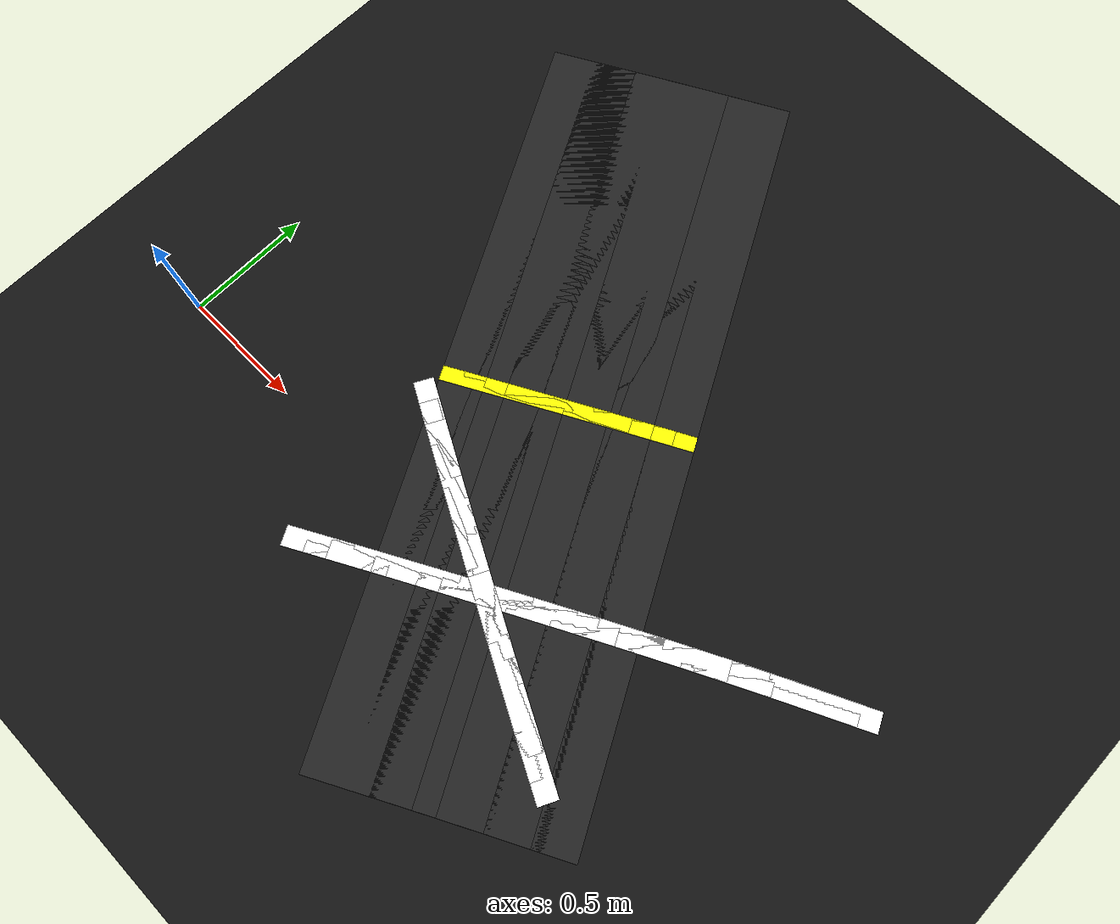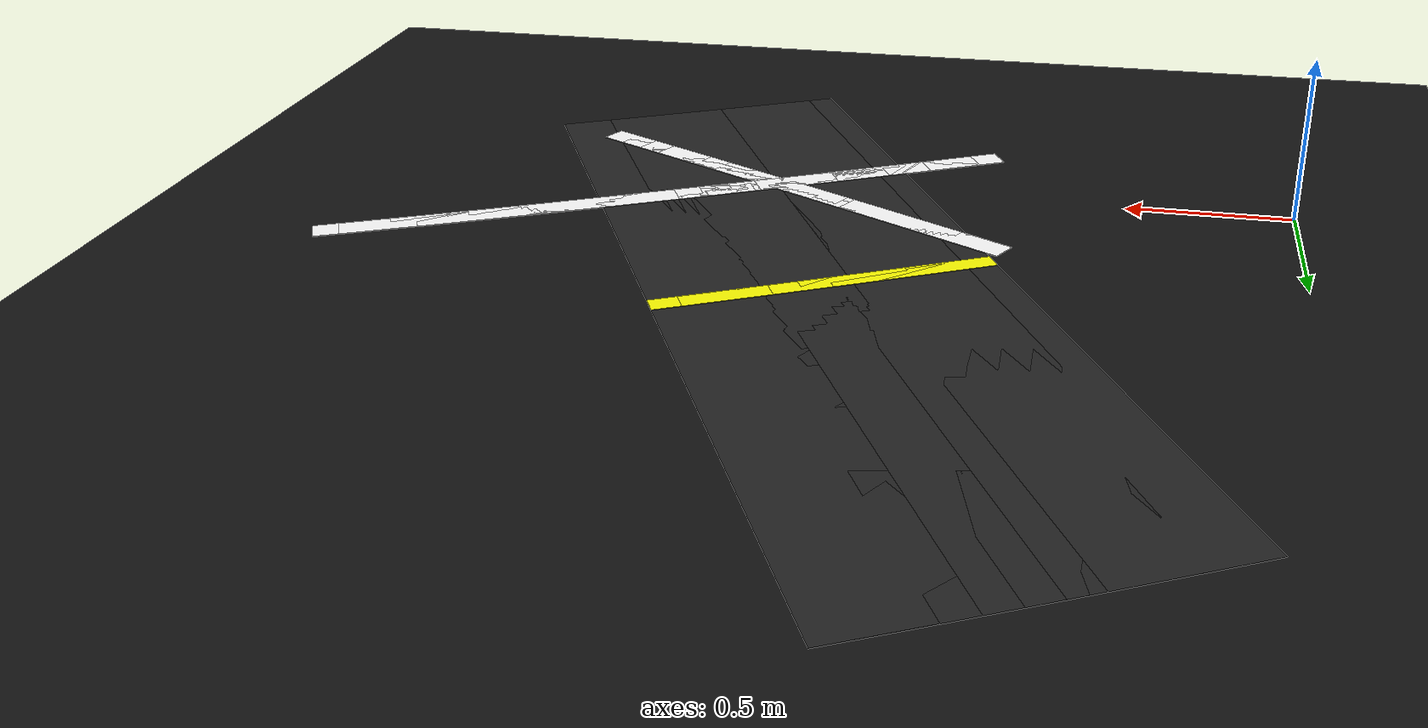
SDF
<sdf version="1.6">
 <world name="figure8_world">
  <model name="ground_plane">
   <static>true</static>
   <link name="link">
    <collision name="collision">
     <geometry><plane><normal>0 0 1</normal><size>120 120</size></plane></geometry>
    </collision>
    <visual name="visual">
     <geometry><plane><normal>0 0 1</normal><size>120 120</size></plane></geometry>
     <material><ambient>0.08 0.08 0.08 1</ambient><diffuse>0.08 0.08 0.08 1</diffuse></material>
    </visual>
   </link>
  </model>
  <model name="seg_01721">
   <static>true</static>
   <pose>1.0134 0.3038 0.0030 0 0 -0.4948</pose>
   <link name="link">
    <collision name="collision"><geometry><box><size>0.4000 0.0800 0.002</size></box></geometry></collision>
    <visual name="visual">
     <geometry><box><size>0.4000 0.0800 0.002</size></box></geometry>
     <material><ambient>1 1 1 1</ambient><diffuse>1 1 1 1</diffuse></material>
    </visual>
   </link>
  </model>
  <model name="seg_01725">
   <static>true</static>
   <pose>1.0897 0.2627 0.0030 0 0 -0.4940</pose>
   <link name="link">
    <collision name="collision"><geometry><box><size>0.4000 0.0800 0.002</size></box></geometry></collision>
    <visual name="visual">
     <geometry><box><size>0.4000 0.0800 0.002</size></box></geometry>
     <material><ambient>1 1 1 1</ambient><diffuse>1 1 1 1</diffuse></material>
    </visual>
   </link>
  </model>
  <model name="seg_01729">
   <static>true</static>
   <pose>1.1657 0.2219 0.0030 0 0 -0.4930</pose>
   <link name="link">
    <collision name="collision"><geometry><box><size>0.4000 0.0800 0.002</size></box></geometry></collision>
    <visual name="visual">
     <geometry><box><size>0.4000 0.0800 0.002</size></box></geometry>
     <material><ambient>1 1 1 1</ambient><diffuse>1 1 1 1</diffuse></material>
    </visual>
   </link>
  </model>
  <model name="seg_01733">
   <static>true</static>
   <pose>1.2416 0.1812 0.0030 0 0 -0.4920</pose>
   <link name="link">
    <collision name="collision"><geometry><box><size>0.4000 0.0800 0.002</size></box></geometry></collision>
    <visual name="visual">
     <geometry><box><size>0.4000 0.0800 0.002</size></box></geometry>
     <material><ambient>1 1 1 1</ambient><diffuse>1 1 1 1</diffuse></material>
    </visual>
   </link>
  </model>
  <model name="seg_01737">
   <static>true</static>
   <pose>1.3171 0.1408 0.0030 0 0 -0.4909</pose>
   <link name="link">
    <collision name="collision"><geometry><box><size>0.4000 0.0800 0.002</size></box></geometry></collision>
    <visual name="visual">
     <geometry><box><size>0.4000 0.0800 0.002</size></box></geometry>
     <material><ambient>1 1 1 1</ambient><diffuse>1 1 1 1</diffuse></material>
    </visual>
   </link>
  </model>
  <model name="seg_01741">
   <static>true</static>
   <pose>1.3924 0.1007 0.0030 0 0 -0.4897</pose>
   <link name="link">
    <collision name="collision"><geometry><box><size>0.4000 0.0800 0.002</size></box></geometry></collision>
    <visual name="visual">
     <geometry><box><size>0.4000 0.0800 0.002</size></box></geometry>
     <material><ambient>1 1 1 1</ambient><diffuse>1 1 1 1</diffuse></material>
    </visual>
   </link>
  </model>
  <model name="seg_01745">
   <static>true</static>
   <pose>1.4674 0.0609 0.0030 0 0 -0.4883</pose>
   <link name="link">
    <collision name="collision"><geometry><box><size>0.4000 0.0800 0.002</size></box></geometry></collision>
    <visual name="visual">
     <geometry><box><size>0.4000 0.0800 0.002</size></box></geometry>
     <material><ambient>1 1 1 1</ambient><diffuse>1 1 1 1</diffuse></material>
    </visual>
   </link>
  </model>
  <model name="seg_01749">
   <static>true</static>
   <pose>1.5420 0.0214 0.0030 0 0 -0.4869</pose>
   <link name="link">
    <collision name="collision"><geometry><box><size>0.4000 0.0800 0.002</size></box></geometry></collision>
    <visual name="visual">
     <geometry><box><size>0.4000 0.0800 0.002</size></box></geometry>
     <material><ambient>1 1 1 1</ambient><diffuse>1 1 1 1</diffuse></material>
    </visual>
   </link>
  </model>
  <model name="seg_01753">
   <static>true</static>
   <pose>1.6163 -0.0178 0.0030 0 0 -0.4853</pose>
   <link name="link">
    <collision name="collision"><geometry><box><size>0.4000 0.0800 0.002</size></box></geometry></collision>
    <visual name="visual">
     <geometry><box><size>0.4000 0.0800 0.002</size></box></geometry>
     <material><ambient>1 1 1 1</ambient><diffuse>1 1 1 1</diffuse></material>
    </visual>
   </link>
  </model>
  <model name="seg_01757">
   <static>true</static>
   <pose>1.6903 -0.0567 0.0030 0 0 -0.4836</pose>
   <link name="link">
    <collision name="collision"><geometry><box><size>0.4000 0.0800 0.002</size></box></geometry></collision>
    <visual name="visual">
     <geometry><box><size>0.4000 0.0800 0.002</size></box></geometry>
     <material><ambient>1 1 1 1</ambient><diffuse>1 1 1 1</diffuse></material>
    </visual>
   </link>
  </model>
  <model name="seg_01761">
   <static>true</static>
   <pose>1.7639 -0.0951 0.0030 0 0 -0.4818</pose>
   <link name="link">
    <collision name="collision"><geometry><box><size>0.4000 0.0800 0.002</size></box></geometry></collision>
    <visual name="visual">
     <geometry><box><size>0.4000 0.0800 0.002</size></box></geometry>
     <material><ambient>1 1 1 1</ambient><diffuse>1 1 1 1</diffuse></material>
    </visual>
   </link>
  </model>
  <model name="seg_01765">
   <static>true</static>
   <pose>1.8370 -0.1332 0.0030 0 0 -0.4799</pose>
   <link name="link">
    <collision name="collision"><geometry><box><size>0.4000 0.0800 0.002</size></box></geometry></collision>
    <visual name="visual">
     <geometry><box><size>0.4000 0.0800 0.002</size></box></geometry>
     <material><ambient>1 1 1 1</ambient><diffuse>1 1 1 1</diffuse></material>
    </visual>
   </link>
  </model>
  <model name="seg_01769">
   <static>true</static>
   <pose>1.9098 -0.1709 0.0030 0 0 -0.4779</pose>
   <link name="link">
    <collision name="collision"><geometry><box><size>0.4000 0.0800 0.002</size></box></geometry></collision>
    <visual name="visual">
     <geometry><box><size>0.4000 0.0800 0.002</size></box></geometry>
     <material><ambient>1 1 1 1</ambient><diffuse>1 1 1 1</diffuse></material>
    </visual>
   </link>
  </model>
  <model name="seg_01773">
   <static>true</static>
   <pose>1.9821 -0.2082 0.0030 0 0 -0.4757</pose>
   <link name="link">
    <collision name="collision"><geometry><box><size>0.4000 0.0800 0.002</size></box></geometry></collision>
    <visual name="visual">
     <geometry><box><size>0.4000 0.0800 0.002</size></box></geometry>
     <material><ambient>1 1 1 1</ambient><diffuse>1 1 1 1</diffuse></material>
    </visual>
   </link>
  </model>
  <model name="seg_01777">
   <static>true</static>
   <pose>2.0540 -0.2450 0.0030 0 0 -0.4734</pose>
   <link name="link">
    <collision name="collision"><geometry><box><size>0.4000 0.0800 0.002</size></box></geometry></collision>
    <visual name="visual">
     <geometry><box><size>0.4000 0.0800 0.002</size></box></geometry>
     <material><ambient>1 1 1 1</ambient><diffuse>1 1 1 1</diffuse></material>
    </visual>
   </link>
  </model>
  <model name="seg_02082">
   <static>true</static>
   <pose>1.0897 -0.2627 0.0030 0 0 0.4940</pose>
   <link name="link">
    <collision name="collision"><geometry><box><size>0.4000 0.0800 0.002</size></box></geometry></collision>
    <visual name="visual">
     <geometry><box><size>0.4000 0.0800 0.002</size></box></geometry>
     <material><ambient>1 1 1 1</ambient><diffuse>1 1 1 1</diffuse></material>
    </visual>
   </link>
  </model>
  <model name="seg_02086">
   <static>true</static>
   <pose>1.1657 -0.2219 0.0030 0 0 0.4930</pose>
   <link name="link">
    <collision name="collision"><geometry><box><size>0.4000 0.0800 0.002</size></box></geometry></collision>
    <visual name="visual">
     <geometry><box><size>0.4000 0.0800 0.002</size></box></geometry>
     <material><ambient>1 1 1 1</ambient><diffuse>1 1 1 1</diffuse></material>
    </visual>
   </link>
  </model>
  <model name="seg_02090">
   <static>true</static>
   <pose>1.2416 -0.1812 0.0030 0 0 0.4920</pose>
   <link name="link">
    <collision name="collision"><geometry><box><size>0.4000 0.0800 0.002</size></box></geometry></collision>
    <visual name="visual">
     <geometry><box><size>0.4000 0.0800 0.002</size></box></geometry>
     <material><ambient>1 1 1 1</ambient><diffuse>1 1 1 1</diffuse></material>
    </visual>
   </link>
  </model>
  <model name="seg_02094">
   <static>true</static>
   <pose>1.3171 -0.1408 0.0030 0 0 0.4909</pose>
   <link name="link">
    <collision name="collision"><geometry><box><size>0.4000 0.0800 0.002</size></box></geometry></collision>
    <visual name="visual">
     <geometry><box><size>0.4000 0.0800 0.002</size></box></geometry>
     <material><ambient>1 1 1 1</ambient><diffuse>1 1 1 1</diffuse></material>
    </visual>
   </link>
  </model>
  <model name="seg_02096">
   <static>true</static>
   <pose>1.0396 0.5611 0.0010 0 0 0.4897</pose>
   <link name="link">
    <collision name="collision"><geometry><box><size>0.4000 3.0000 0.002</size></box></geometry></collision>
    <visual name="visual">
     <geometry><box><size>0.4000 3.0000 0.002</size></box></geometry>
     <material><ambient>0.14 0.14 0.14 1</ambient><diffuse>0.14 0.14 0.14 1</diffuse></material>
    </visual>
   </link>
  </model>
  <model name="seg_02098">
   <static>true</static>
   <pose>1.3924 -0.1007 0.0030 0 0 0.4897</pose>
   <link name="link">
    <collision name="collision"><geometry><box><size>0.4000 0.0800 0.002</size></box></geometry></collision>
    <visual name="visual">
     <geometry><box><size>0.4000 0.0800 0.002</size></box></geometry>
     <material><ambient>1 1 1 1</ambient><diffuse>1 1 1 1</diffuse></material>
    </visual>
   </link>
  </model>
  <model name="seg_02099">
   <static>true</static>
   <pose>1.0396 0.5611 0.0030 0 0 0.4897</pose>
   <link name="link">
    <collision name="collision"><geometry><box><size>0.4000 0.0600 0.002</size></box></geometry></collision>
    <visual name="visual">
     <geometry><box><size>0.4000 0.0600 0.002</size></box></geometry>
     <material><ambient>1 1 0 1</ambient><diffuse>1 1 0 1</diffuse></material>
    </visual>
   </link>
  </model>
  <model name="seg_02100">
   <static>true</static>
   <pose>1.1155 0.6014 0.0010 0 0 0.4883</pose>
   <link name="link">
    <collision name="collision"><geometry><box><size>0.4000 3.0000 0.002</size></box></geometry></collision>
    <visual name="visual">
     <geometry><box><size>0.4000 3.0000 0.002</size></box></geometry>
     <material><ambient>0.14 0.14 0.14 1</ambient><diffuse>0.14 0.14 0.14 1</diffuse></material>
    </visual>
   </link>
  </model>
  <model name="seg_02102">
   <static>true</static>
   <pose>1.4674 -0.0609 0.0030 0 0 0.4883</pose>
   <link name="link">
    <collision name="collision"><geometry><box><size>0.4000 0.0800 0.002</size></box></geometry></collision>
    <visual name="visual">
     <geometry><box><size>0.4000 0.0800 0.002</size></box></geometry>
     <material><ambient>1 1 1 1</ambient><diffuse>1 1 1 1</diffuse></material>
    </visual>
   </link>
  </model>
  <model name="seg_02103">
   <static>true</static>
   <pose>1.1155 0.6014 0.0030 0 0 0.4883</pose>
   <link name="link">
    <collision name="collision"><geometry><box><size>0.4000 0.0600 0.002</size></box></geometry></collision>
    <visual name="visual">
     <geometry><box><size>0.4000 0.0600 0.002</size></box></geometry>
     <material><ambient>1 1 0 1</ambient><diffuse>1 1 0 1</diffuse></material>
    </visual>
   </link>
  </model>
  <model name="seg_02104">
   <static>true</static>
   <pose>1.1911 0.6415 0.0010 0 0 0.4869</pose>
   <link name="link">
    <collision name="collision"><geometry><box><size>0.4000 3.0000 0.002</size></box></geometry></collision>
    <visual name="visual">
     <geometry><box><size>0.4000 3.0000 0.002</size></box></geometry>
     <material><ambient>0.14 0.14 0.14 1</ambient><diffuse>0.14 0.14 0.14 1</diffuse></material>
    </visual>
   </link>
  </model>
  <model name="seg_02106">
   <static>true</static>
   <pose>1.5420 -0.0214 0.0030 0 0 0.4869</pose>
   <link name="link">
    <collision name="collision"><geometry><box><size>0.4000 0.0800 0.002</size></box></geometry></collision>
    <visual name="visual">
     <geometry><box><size>0.4000 0.0800 0.002</size></box></geometry>
     <material><ambient>1 1 1 1</ambient><diffuse>1 1 1 1</diffuse></material>
    </visual>
   </link>
  </model>
  <model name="seg_02107">
   <static>true</static>
   <pose>1.1911 0.6415 0.0030 0 0 0.4869</pose>
   <link name="link">
    <collision name="collision"><geometry><box><size>0.4000 0.0600 0.002</size></box></geometry></collision>
    <visual name="visual">
     <geometry><box><size>0.4000 0.0600 0.002</size></box></geometry>
     <material><ambient>1 1 0 1</ambient><diffuse>1 1 0 1</diffuse></material>
    </visual>
   </link>
  </model>
  <model name="seg_02108">
   <static>true</static>
   <pose>1.2665 0.6812 0.0010 0 0 0.4853</pose>
   <link name="link">
    <collision name="collision"><geometry><box><size>0.4000 3.0000 0.002</size></box></geometry></collision>
    <visual name="visual">
     <geometry><box><size>0.4000 3.0000 0.002</size></box></geometry>
     <material><ambient>0.14 0.14 0.14 1</ambient><diffuse>0.14 0.14 0.14 1</diffuse></material>
    </visual>
   </link>
  </model>
  <model name="seg_02110">
   <static>true</static>
   <pose>1.6163 0.0178 0.0030 0 0 0.4853</pose>
   <link name="link">
    <collision name="collision"><geometry><box><size>0.4000 0.0800 0.002</size></box></geometry></collision>
    <visual name="visual">
     <geometry><box><size>0.4000 0.0800 0.002</size></box></geometry>
     <material><ambient>1 1 1 1</ambient><diffuse>1 1 1 1</diffuse></material>
    </visual>
   </link>
  </model>
  <model name="seg_02111">
   <static>true</static>
   <pose>1.2665 0.6812 0.0030 0 0 0.4853</pose>
   <link name="link">
    <collision name="collision"><geometry><box><size>0.4000 0.0600 0.002</size></box></geometry></collision>
    <visual name="visual">
     <geometry><box><size>0.4000 0.0600 0.002</size></box></geometry>
     <material><ambient>1 1 0 1</ambient><diffuse>1 1 0 1</diffuse></material>
    </visual>
   </link>
  </model>
  <model name="seg_02112">
   <static>true</static>
   <pose>1.3415 0.7206 0.0010 0 0 0.4836</pose>
   <link name="link">
    <collision name="collision"><geometry><box><size>0.4000 3.0000 0.002</size></box></geometry></collision>
    <visual name="visual">
     <geometry><box><size>0.4000 3.0000 0.002</size></box></geometry>
     <material><ambient>0.14 0.14 0.14 1</ambient><diffuse>0.14 0.14 0.14 1</diffuse></material>
    </visual>
   </link>
  </model>
  <model name="seg_02114">
   <static>true</static>
   <pose>1.6903 0.0567 0.0030 0 0 0.4836</pose>
   <link name="link">
    <collision name="collision"><geometry><box><size>0.4000 0.0800 0.002</size></box></geometry></collision>
    <visual name="visual">
     <geometry><box><size>0.4000 0.0800 0.002</size></box></geometry>
     <material><ambient>1 1 1 1</ambient><diffuse>1 1 1 1</diffuse></material>
    </visual>
   </link>
  </model>
  <model name="seg_02115">
   <static>true</static>
   <pose>1.3415 0.7206 0.0030 0 0 0.4836</pose>
   <link name="link">
    <collision name="collision"><geometry><box><size>0.4000 0.0600 0.002</size></box></geometry></collision>
    <visual name="visual">
     <geometry><box><size>0.4000 0.0600 0.002</size></box></geometry>
     <material><ambient>1 1 0 1</ambient><diffuse>1 1 0 1</diffuse></material>
    </visual>
   </link>
  </model>
  <model name="seg_02116">
   <static>true</static>
   <pose>1.4163 0.7597 0.0010 0 0 0.4818</pose>
   <link name="link">
    <collision name="collision"><geometry><box><size>0.4000 3.0000 0.002</size></box></geometry></collision>
    <visual name="visual">
     <geometry><box><size>0.4000 3.0000 0.002</size></box></geometry>
     <material><ambient>0.14 0.14 0.14 1</ambient><diffuse>0.14 0.14 0.14 1</diffuse></material>
    </visual>
   </link>
  </model>
  <model name="seg_02118">
   <static>true</static>
   <pose>1.7639 0.0951 0.0030 0 0 0.4818</pose>
   <link name="link">
    <collision name="collision"><geometry><box><size>0.4000 0.0800 0.002</size></box></geometry></collision>
    <visual name="visual">
     <geometry><box><size>0.4000 0.0800 0.002</size></box></geometry>
     <material><ambient>1 1 1 1</ambient><diffuse>1 1 1 1</diffuse></material>
    </visual>
   </link>
  </model>
  <model name="seg_02119">
   <static>true</static>
   <pose>1.4163 0.7597 0.0030 0 0 0.4818</pose>
   <link name="link">
    <collision name="collision"><geometry><box><size>0.4000 0.0600 0.002</size></box></geometry></collision>
    <visual name="visual">
     <geometry><box><size>0.4000 0.0600 0.002</size></box></geometry>
     <material><ambient>1 1 0 1</ambient><diffuse>1 1 0 1</diffuse></material>
    </visual>
   </link>
  </model>
  <model name="seg_02120">
   <static>true</static>
   <pose>1.4908 0.7985 0.0010 0 0 0.4799</pose>
   <link name="link">
    <collision name="collision"><geometry><box><size>0.4000 3.0000 0.002</size></box></geometry></collision>
    <visual name="visual">
     <geometry><box><size>0.4000 3.0000 0.002</size></box></geometry>
     <material><ambient>0.14 0.14 0.14 1</ambient><diffuse>0.14 0.14 0.14 1</diffuse></material>
    </visual>
   </link>
  </model>
  <model name="seg_02122">
   <static>true</static>
   <pose>1.8370 0.1332 0.0030 0 0 0.4799</pose>
   <link name="link">
    <collision name="collision"><geometry><box><size>0.4000 0.0800 0.002</size></box></geometry></collision>
    <visual name="visual">
     <geometry><box><size>0.4000 0.0800 0.002</size></box></geometry>
     <material><ambient>1 1 1 1</ambient><diffuse>1 1 1 1</diffuse></material>
    </visual>
   </link>
  </model>
  <model name="seg_02123">
   <static>true</static>
   <pose>1.4908 0.7985 0.0030 0 0 0.4799</pose>
   <link name="link">
    <collision name="collision"><geometry><box><size>0.4000 0.0600 0.002</size></box></geometry></collision>
    <visual name="visual">
     <geometry><box><size>0.4000 0.0600 0.002</size></box></geometry>
     <material><ambient>1 1 0 1</ambient><diffuse>1 1 0 1</diffuse></material>
    </visual>
   </link>
  </model>
  <model name="seg_02124">
   <static>true</static>
   <pose>1.5649 0.8369 0.0010 0 0 0.4779</pose>
   <link name="link">
    <collision name="collision"><geometry><box><size>0.4000 3.0000 0.002</size></box></geometry></collision>
    <visual name="visual">
     <geometry><box><size>0.4000 3.0000 0.002</size></box></geometry>
     <material><ambient>0.14 0.14 0.14 1</ambient><diffuse>0.14 0.14 0.14 1</diffuse></material>
    </visual>
   </link>
  </model>
  <model name="seg_02126">
   <static>true</static>
   <pose>1.9098 0.1709 0.0030 0 0 0.4779</pose>
   <link name="link">
    <collision name="collision"><geometry><box><size>0.4000 0.0800 0.002</size></box></geometry></collision>
    <visual name="visual">
     <geometry><box><size>0.4000 0.0800 0.002</size></box></geometry>
     <material><ambient>1 1 1 1</ambient><diffuse>1 1 1 1</diffuse></material>
    </visual>
   </link>
  </model>
  <model name="seg_02127">
   <static>true</static>
   <pose>1.5649 0.8369 0.0030 0 0 0.4779</pose>
   <link name="link">
    <collision name="collision"><geometry><box><size>0.4000 0.0600 0.002</size></box></geometry></collision>
    <visual name="visual">
     <geometry><box><size>0.4000 0.0600 0.002</size></box></geometry>
     <material><ambient>1 1 0 1</ambient><diffuse>1 1 0 1</diffuse></material>
    </visual>
   </link>
  </model>
  <model name="seg_02130">
   <static>true</static>
   <pose>1.9821 0.2082 0.0030 0 0 0.4757</pose>
   <link name="link">
    <collision name="collision"><geometry><box><size>0.4000 0.0800 0.002</size></box></geometry></collision>
    <visual name="visual">
     <geometry><box><size>0.4000 0.0800 0.002</size></box></geometry>
     <material><ambient>1 1 1 1</ambient><diffuse>1 1 1 1</diffuse></material>
    </visual>
   </link>
  </model>
  <model name="seg_02134">
   <static>true</static>
   <pose>2.0540 0.2450 0.0030 0 0 0.4734</pose>
   <link name="link">
    <collision name="collision"><geometry><box><size>0.4000 0.0800 0.002</size></box></geometry></collision>
    <visual name="visual">
     <geometry><box><size>0.4000 0.0800 0.002</size></box></geometry>
     <material><ambient>1 1 1 1</ambient><diffuse>1 1 1 1</diffuse></material>
    </visual>
   </link>
  </model>
  <model name="seg_02138">
   <static>true</static>
   <pose>2.1254 0.2813 0.0030 0 0 0.4709</pose>
   <link name="link">
    <collision name="collision"><geometry><box><size>0.4000 0.0800 0.002</size></box></geometry></collision>
    <visual name="visual">
     <geometry><box><size>0.4000 0.0800 0.002</size></box></geometry>
     <material><ambient>1 1 1 1</ambient><diffuse>1 1 1 1</diffuse></material>
    </visual>
   </link>
  </model>
  <model name="seg_02142">
   <static>true</static>
   <pose>2.1963 0.3172 0.0030 0 0 0.4684</pose>
   <link name="link">
    <collision name="collision"><geometry><box><size>0.4000 0.0800 0.002</size></box></geometry></collision>
    <visual name="visual">
     <geometry><box><size>0.4000 0.0800 0.002</size></box></geometry>
     <material><ambient>1 1 1 1</ambient><diffuse>1 1 1 1</diffuse></material>
    </visual>
   </link>
  </model>
  <model name="seg_02146">
   <static>true</static>
   <pose>2.2667 0.3525 0.0030 0 0 0.4656</pose>
   <link name="link">
    <collision name="collision"><geometry><box><size>0.4000 0.0800 0.002</size></box></geometry></collision>
    <visual name="visual">
     <geometry><box><size>0.4000 0.0800 0.002</size></box></geometry>
     <material><ambient>1 1 1 1</ambient><diffuse>1 1 1 1</diffuse></material>
    </visual>
   </link>
  </model>
  <model name="seg_02150">
   <static>true</static>
   <pose>2.3365 0.3874 0.0030 0 0 0.4627</pose>
   <link name="link">
    <collision name="collision"><geometry><box><size>0.4000 0.0800 0.002</size></box></geometry></collision>
    <visual name="visual">
     <geometry><box><size>0.4000 0.0800 0.002</size></box></geometry>
     <material><ambient>1 1 1 1</ambient><diffuse>1 1 1 1</diffuse></material>
    </visual>
   </link>
  </model>
  <model name="seg_02154">
   <static>true</static>
   <pose>2.4058 0.4217 0.0030 0 0 0.4597</pose>
   <link name="link">
    <collision name="collision"><geometry><box><size>0.4000 0.0800 0.002</size></box></geometry></collision>
    <visual name="visual">
     <geometry><box><size>0.4000 0.0800 0.002</size></box></geometry>
     <material><ambient>1 1 1 1</ambient><diffuse>1 1 1 1</diffuse></material>
    </visual>
   </link>
  </model>
  <model name="seg_02158">
   <static>true</static>
   <pose>2.4745 0.4554 0.0030 0 0 0.4565</pose>
   <link name="link">
    <collision name="collision"><geometry><box><size>0.4000 0.0800 0.002</size></box></geometry></collision>
    <visual name="visual">
     <geometry><box><size>0.4000 0.0800 0.002</size></box></geometry>
     <material><ambient>1 1 1 1</ambient><diffuse>1 1 1 1</diffuse></material>
    </visual>
   </link>
  </model>
  <model name="seg_02162">
   <static>true</static>
   <pose>2.5426 0.4885 0.0030 0 0 0.4531</pose>
   <link name="link">
    <collision name="collision"><geometry><box><size>0.4000 0.0800 0.002</size></box></geometry></collision>
    <visual name="visual">
     <geometry><box><size>0.4000 0.0800 0.002</size></box></geometry>
     <material><ambient>1 1 1 1</ambient><diffuse>1 1 1 1</diffuse></material>
    </visual>
   </link>
  </model>
  <model name="seg_02166">
   <static>true</static>
   <pose>2.6100 0.5211 0.0030 0 0 0.4495</pose>
   <link name="link">
    <collision name="collision"><geometry><box><size>0.4000 0.0800 0.002</size></box></geometry></collision>
    <visual name="visual">
     <geometry><box><size>0.4000 0.0800 0.002</size></box></geometry>
     <material><ambient>1 1 1 1</ambient><diffuse>1 1 1 1</diffuse></material>
    </visual>
   </link>
  </model>
  <model name="seg_02170">
   <static>true</static>
   <pose>2.6768 0.5530 0.0030 0 0 0.4458</pose>
   <link name="link">
    <collision name="collision"><geometry><box><size>0.4000 0.0800 0.002</size></box></geometry></collision>
    <visual name="visual">
     <geometry><box><size>0.4000 0.0800 0.002</size></box></geometry>
     <material><ambient>1 1 1 1</ambient><diffuse>1 1 1 1</diffuse></material>
    </visual>
   </link>
  </model>
 </world>
</sdf>
